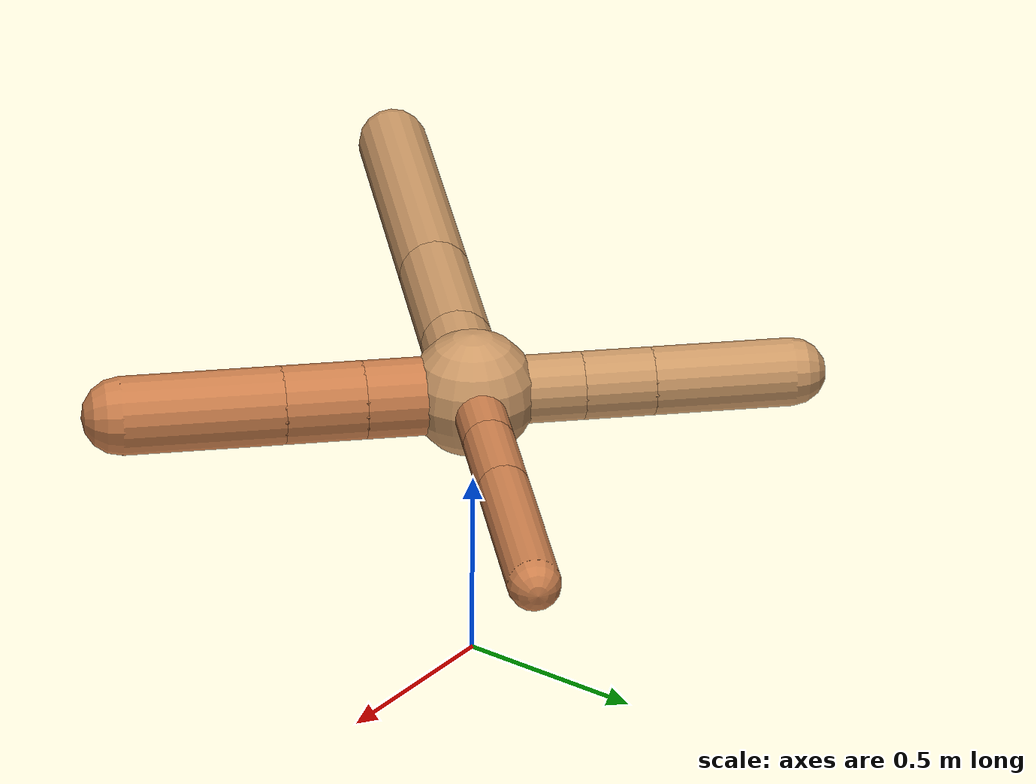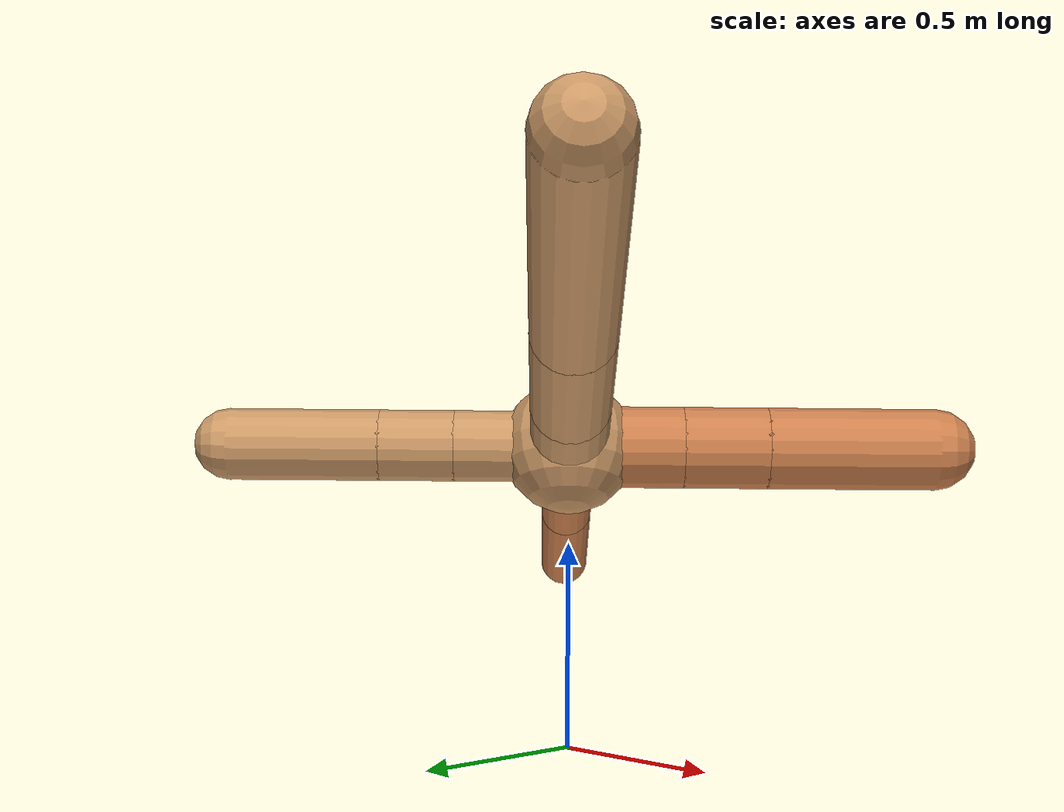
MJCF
<?xml version="1.0" ?>
<mujoco model="ant">

	<compiler angle="degree" coordinate="local" inertiafromgeom="true"/>

	<option integrator="RK4" timestep="0.01"/>

	<custom>

		<numeric data="0.0 0.0 0.55 1.0 0.0 0.0 0.0 0.0 1.0 0.0 -1.0 0.0 -1.0 0.0 1.0" name="init_qpos"/>

	</custom>

	<default>

		<joint armature="1" damping="1" limited="true"/>

		<geom conaffinity="0" condim="3" density="5.0" friction="1.5 0.1 0.1" margin="0.01" rgba="0.8 0.6 0.4 1"/>

	</default>

	<worldbody>

		<body name="torso" pos="0 0 0.75">

			<geom name="torso_geom" pos="0 0 0" size="0.16582121406141087" type="sphere"/>

			<!--joint armature="0" damping="0" limited="false" margin="0.01" name="root" pos="0 0 0" type="free"/-->

			<body name="front_left_leg" pos="0 0 0">

				<geom fromto="0 0 0 0.2 0.2 0" name="aux_1_geom" size="0.06729089637916126" type="capsule" rgba=".8 .5 .3 1"/>

				<body name="aux_1" pos="0.2 0.2 0">

					<joint axis="0 0 1" name="hip_1" pos="0.0 0.0 0.0" range="-40 40" type="hinge"/>

					<geom fromto="0 0 0 0.1745870697991553 0.1745870697991553 0" name="left_leg_geom" size="0.06729089637916126" type="capsule" rgba=".8 .5 .3 1"/>

					<body pos="0.1745870697991553 0.1745870697991553 0" name="front_left_foot">

						<joint axis="-1 1 0" name="ankle_1" pos="0.0 0.0 0.0" range="30 100" type="hinge"/>

						<geom fromto="0 0 0 0.3491741395983106 0.3491741395983106 0" name="left_ankle_geom" size="0.06729089637916126" type="capsule" rgba=".8 .5 .3 1"/>

					</body>

				</body>

			</body>

			<body name="front_right_leg" pos="0 0 0">

				<geom fromto="0 0 0 -0.2 0.2 0" name="aux_2_geom" size="0.08835530772797526" type="capsule"/>

				<body name="aux_2" pos="-0.2 0.2 0">

					<joint axis="0 0 1" name="hip_2" pos="0.0 0.0 0.0" range="-40 40" type="hinge"/>

					<geom fromto="0 0 0 -0.12991338885508685 0.12991338885508685 0" name="right_leg_geom" size="0.08835530772797526" type="capsule"/>

					<body pos="-0.12991338885508685 0.12991338885508685 0" name="front_right_foot">

						<joint axis="1 1 0" name="ankle_2" pos="0.0 0.0 0.0" range="-100 -30" type="hinge"/>

						<geom fromto="0 0 0 -0.2598267777101737 0.2598267777101737 0" name="right_ankle_geom" size="0.08835530772797526" type="capsule"/>

					</body>

				</body>

			</body>

			<body name="left_back_leg" pos="0 0 0">

				<geom fromto="0 0 0 -0.2 -0.2 0" name="aux_3_geom" size="0.09614211815732907" type="capsule"/>

				<body name="aux_3" pos="-0.2 -0.2 0">

					<joint axis="0 0 1" name="hip_3" pos="0.0 0.0 0.0" range="-40 40" type="hinge"/>

					<geom fromto="0 0 0 -0.29502588589605316 -0.29502588589605316 0" name="back_leg_geom" size="0.09614211815732907" type="capsule"/>

					<body pos="-0.29502588589605316 -0.29502588589605316 0" name="left_back_foot">

						<joint axis="-1 1 0" name="ankle_3" pos="0.0 0.0 0.0" range="-100 -30" type="hinge"/>

						<geom fromto="0 0 0 -0.5900517717921063 -0.5900517717921063 0" name="third_ankle_geom" size="0.09614211815732907" type="capsule"/>

					</body>

				</body>

			</body>

			<body name="right_back_leg" pos="0 0 0">

				<geom fromto="0 0 0 0.2 -0.2 0" name="aux_4_geom" size="0.10153439676102512" type="capsule" rgba=".8 .5 .3 1"/>

				<body name="aux_4" pos="0.2 -0.2 0">

					<joint axis="0 0 1" name="hip_4" pos="0.0 0.0 0.0" range="-40 40" type="hinge"/>

					<geom fromto="0 0 0 0.14776732302033616 -0.14776732302033616 0" name="rightback_leg_geom" size="0.10153439676102512" type="capsule" rgba=".8 .5 .3 1"/>

					<body pos="0.14776732302033616 -0.14776732302033616 0" name="right_back_foot">

						<joint axis="1 1 0" name="ankle_4" pos="0.0 0.0 0.0" range="30 100" type="hinge"/>

						<geom fromto="0 0 0 0.2955346460406723 -0.2955346460406723 0" name="fourth_ankle_geom" size="0.10153439676102512" type="capsule" rgba=".8 .5 .3 1"/>

					</body>

				</body>

			</body>

		</body>

	</worldbody>

	<actuator>

		<motor ctrllimited="true" ctrlrange="-1.0 1.0" joint="hip_4" gear="150"/>

		<motor ctrllimited="true" ctrlrange="-1.0 1.0" joint="ankle_4" gear="150"/>

		<motor ctrllimited="true" ctrlrange="-1.0 1.0" joint="hip_1" gear="150"/>

		<motor ctrllimited="true" ctrlrange="-1.0 1.0" joint="ankle_1" gear="150"/>

		<motor ctrllimited="true" ctrlrange="-1.0 1.0" joint="hip_2" gear="150"/>

		<motor ctrllimited="true" ctrlrange="-1.0 1.0" joint="ankle_2" gear="150"/>

		<motor ctrllimited="true" ctrlrange="-1.0 1.0" joint="hip_3" gear="150"/>

		<motor ctrllimited="true" ctrlrange="-1.0 1.0" joint="ankle_3" gear="150"/>

	</actuator>

</mujoco>
